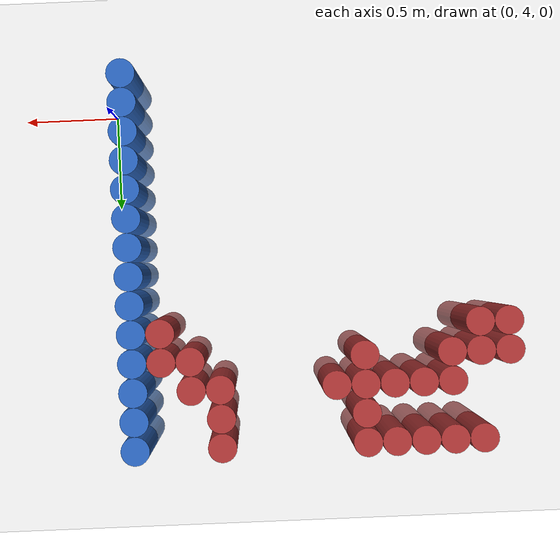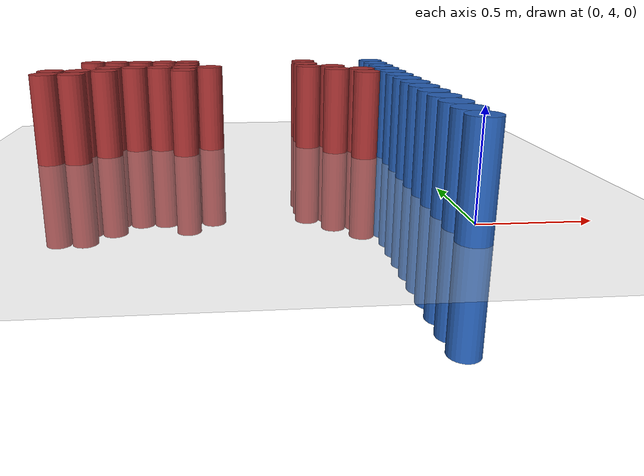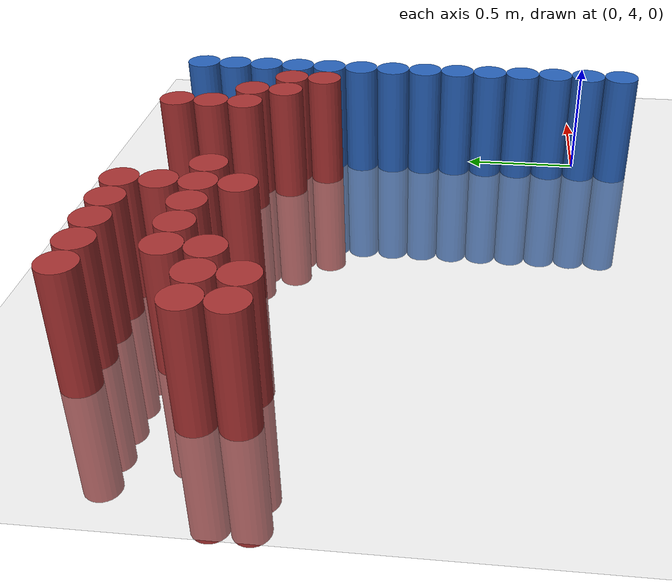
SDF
<sdf version="1.6">
 <world name="default">
  <model name="ground_plane">
   <static>1</static>
   <link name="link">
    <collision name="collision">
     <geometry><plane><normal>0 0 1</normal><size>100 100</size></plane></geometry>
     <surface><friction><ode><mu>100</mu><mu2>50</mu2></ode></friction></surface>
    </collision>
    <visual name="visual">
     <cast_shadows>0</cast_shadows>
     <geometry><plane><normal>0 0 1</normal><size>100 100</size></plane></geometry>
     <material>
      <script><uri>file://media/materials/scripts/gazebo.material</uri><name>Gazebo/Grey</name></script>
     </material>
    </visual>
   </link>
  </model>
  <model name="unit_cylinder_78">
   <static>1</static>
   <pose>-0.075000 3.825000 0.000000 0.000000 0.000000 0.000000</pose>
   <link name="link">
    <inertial>
     <mass>1</mass>
     <inertia><ixx>0.145833</ixx><ixy>0</ixy><ixz>0</ixz><iyy>0.145833</iyy><iyz>0</iyz><izz>0.125</izz></inertia>
    </inertial>
    <collision name="collision">
     <geometry><cylinder><radius>0.075000</radius><length>1</length></cylinder></geometry>
    </collision>
    <visual name="visual">
     <geometry><cylinder><radius>0.075000</radius><length>1</length></cylinder></geometry>
     <material>
      <ambient>0.152000 0.379000 0.720000 1</ambient>
      <diffuse>0.152000 0.379000 0.720000 1</diffuse>
     </material>
     <material>
      <script><name>Gazebo/Grey</name><uri>file://media/materials/scripts/gazebo.material</uri></script>
     </material>
    </visual>
    <sensor name="sensor_contact" type="contact"><contact><collision>collision</collision></contact></sensor>
   </link>
   <plugin filename="gz-sim-touchplugin-system" name="gz::sim::systems::TouchPlugin">
    <target>robot</target>
    <namespace>robot</namespace>
    <time>0.001</time>
    <enabled>true</enabled>
   </plugin>
  </model>
  <model name="unit_cylinder_80">
   <static>1</static>
   <pose>-0.075000 3.975000 0.000000 0.000000 0.000000 0.000000</pose>
   <link name="link">
    <inertial>
     <mass>1</mass>
     <inertia><ixx>0.145833</ixx><ixy>0</ixy><ixz>0</ixz><iyy>0.145833</iyy><iyz>0</iyz><izz>0.125</izz></inertia>
    </inertial>
    <collision name="collision">
     <geometry><cylinder><radius>0.075000</radius><length>1</length></cylinder></geometry>
    </collision>
    <visual name="visual">
     <geometry><cylinder><radius>0.075000</radius><length>1</length></cylinder></geometry>
     <material>
      <ambient>0.152000 0.379000 0.720000 1</ambient>
      <diffuse>0.152000 0.379000 0.720000 1</diffuse>
     </material>
     <material>
      <script><name>Gazebo/Grey</name><uri>file://media/materials/scripts/gazebo.material</uri></script>
     </material>
    </visual>
    <sensor name="sensor_contact" type="contact"><contact><collision>collision</collision></contact></sensor>
   </link>
   <plugin filename="gz-sim-touchplugin-system" name="gz::sim::systems::TouchPlugin">
    <target>robot</target>
    <namespace>robot</namespace>
    <time>0.001</time>
    <enabled>true</enabled>
   </plugin>
  </model>
  <model name="unit_cylinder_82">
   <static>1</static>
   <pose>-0.075000 4.125000 0.000000 0.000000 0.000000 0.000000</pose>
   <link name="link">
    <inertial>
     <mass>1</mass>
     <inertia><ixx>0.145833</ixx><ixy>0</ixy><ixz>0</ixz><iyy>0.145833</iyy><iyz>0</iyz><izz>0.125</izz></inertia>
    </inertial>
    <collision name="collision">
     <geometry><cylinder><radius>0.075000</radius><length>1</length></cylinder></geometry>
    </collision>
    <visual name="visual">
     <geometry><cylinder><radius>0.075000</radius><length>1</length></cylinder></geometry>
     <material>
      <ambient>0.152000 0.379000 0.720000 1</ambient>
      <diffuse>0.152000 0.379000 0.720000 1</diffuse>
     </material>
     <material>
      <script><name>Gazebo/Grey</name><uri>file://media/materials/scripts/gazebo.material</uri></script>
     </material>
    </visual>
    <sensor name="sensor_contact" type="contact"><contact><collision>collision</collision></contact></sensor>
   </link>
   <plugin filename="gz-sim-touchplugin-system" name="gz::sim::systems::TouchPlugin">
    <target>robot</target>
    <namespace>robot</namespace>
    <time>0.001</time>
    <enabled>true</enabled>
   </plugin>
  </model>
  <model name="unit_cylinder_84">
   <static>1</static>
   <pose>-0.075000 4.275000 0.000000 0.000000 0.000000 0.000000</pose>
   <link name="link">
    <inertial>
     <mass>1</mass>
     <inertia><ixx>0.145833</ixx><ixy>0</ixy><ixz>0</ixz><iyy>0.145833</iyy><iyz>0</iyz><izz>0.125</izz></inertia>
    </inertial>
    <collision name="collision">
     <geometry><cylinder><radius>0.075000</radius><length>1</length></cylinder></geometry>
    </collision>
    <visual name="visual">
     <geometry><cylinder><radius>0.075000</radius><length>1</length></cylinder></geometry>
     <material>
      <ambient>0.152000 0.379000 0.720000 1</ambient>
      <diffuse>0.152000 0.379000 0.720000 1</diffuse>
     </material>
     <material>
      <script><name>Gazebo/Grey</name><uri>file://media/materials/scripts/gazebo.material</uri></script>
     </material>
    </visual>
    <sensor name="sensor_contact" type="contact"><contact><collision>collision</collision></contact></sensor>
   </link>
   <plugin filename="gz-sim-touchplugin-system" name="gz::sim::systems::TouchPlugin">
    <target>robot</target>
    <namespace>robot</namespace>
    <time>0.001</time>
    <enabled>true</enabled>
   </plugin>
  </model>
  <model name="unit_cylinder_86">
   <static>1</static>
   <pose>-0.075000 4.425000 0.000000 0.000000 0.000000 0.000000</pose>
   <link name="link">
    <inertial>
     <mass>1</mass>
     <inertia><ixx>0.145833</ixx><ixy>0</ixy><ixz>0</ixz><iyy>0.145833</iyy><iyz>0</iyz><izz>0.125</izz></inertia>
    </inertial>
    <collision name="collision">
     <geometry><cylinder><radius>0.075000</radius><length>1</length></cylinder></geometry>
    </collision>
    <visual name="visual">
     <geometry><cylinder><radius>0.075000</radius><length>1</length></cylinder></geometry>
     <material>
      <ambient>0.152000 0.379000 0.720000 1</ambient>
      <diffuse>0.152000 0.379000 0.720000 1</diffuse>
     </material>
     <material>
      <script><name>Gazebo/Grey</name><uri>file://media/materials/scripts/gazebo.material</uri></script>
     </material>
    </visual>
    <sensor name="sensor_contact" type="contact"><contact><collision>collision</collision></contact></sensor>
   </link>
   <plugin filename="gz-sim-touchplugin-system" name="gz::sim::systems::TouchPlugin">
    <target>robot</target>
    <namespace>robot</namespace>
    <time>0.001</time>
    <enabled>true</enabled>
   </plugin>
  </model>
  <model name="unit_cylinder_88">
   <static>1</static>
   <pose>-0.075000 4.575000 0.000000 0.000000 0.000000 0.000000</pose>
   <link name="link">
    <inertial>
     <mass>1</mass>
     <inertia><ixx>0.145833</ixx><ixy>0</ixy><ixz>0</ixz><iyy>0.145833</iyy><iyz>0</iyz><izz>0.125</izz></inertia>
    </inertial>
    <collision name="collision">
     <geometry><cylinder><radius>0.075000</radius><length>1</length></cylinder></geometry>
    </collision>
    <visual name="visual">
     <geometry><cylinder><radius>0.075000</radius><length>1</length></cylinder></geometry>
     <material>
      <ambient>0.152000 0.379000 0.720000 1</ambient>
      <diffuse>0.152000 0.379000 0.720000 1</diffuse>
     </material>
     <material>
      <script><name>Gazebo/Grey</name><uri>file://media/materials/scripts/gazebo.material</uri></script>
     </material>
    </visual>
    <sensor name="sensor_contact" type="contact"><contact><collision>collision</collision></contact></sensor>
   </link>
   <plugin filename="gz-sim-touchplugin-system" name="gz::sim::systems::TouchPlugin">
    <target>robot</target>
    <namespace>robot</namespace>
    <time>0.001</time>
    <enabled>true</enabled>
   </plugin>
  </model>
  <model name="unit_cylinder_90">
   <static>1</static>
   <pose>-0.075000 4.725000 0.000000 0.000000 0.000000 0.000000</pose>
   <link name="link">
    <inertial>
     <mass>1</mass>
     <inertia><ixx>0.145833</ixx><ixy>0</ixy><ixz>0</ixz><iyy>0.145833</iyy><iyz>0</iyz><izz>0.125</izz></inertia>
    </inertial>
    <collision name="collision">
     <geometry><cylinder><radius>0.075000</radius><length>1</length></cylinder></geometry>
    </collision>
    <visual name="visual">
     <geometry><cylinder><radius>0.075000</radius><length>1</length></cylinder></geometry>
     <material>
      <ambient>0.152000 0.379000 0.720000 1</ambient>
      <diffuse>0.152000 0.379000 0.720000 1</diffuse>
     </material>
     <material>
      <script><name>Gazebo/Grey</name><uri>file://media/materials/scripts/gazebo.material</uri></script>
     </material>
    </visual>
    <sensor name="sensor_contact" type="contact"><contact><collision>collision</collision></contact></sensor>
   </link>
   <plugin filename="gz-sim-touchplugin-system" name="gz::sim::systems::TouchPlugin">
    <target>robot</target>
    <namespace>robot</namespace>
    <time>0.001</time>
    <enabled>true</enabled>
   </plugin>
  </model>
  <model name="unit_cylinder_92">
   <static>1</static>
   <pose>-0.075000 4.875000 0.000000 0.000000 0.000000 0.000000</pose>
   <link name="link">
    <inertial>
     <mass>1</mass>
     <inertia><ixx>0.145833</ixx><ixy>0</ixy><ixz>0</ixz><iyy>0.145833</iyy><iyz>0</iyz><izz>0.125</izz></inertia>
    </inertial>
    <collision name="collision">
     <geometry><cylinder><radius>0.075000</radius><length>1</length></cylinder></geometry>
    </collision>
    <visual name="visual">
     <geometry><cylinder><radius>0.075000</radius><length>1</length></cylinder></geometry>
     <material>
      <ambient>0.152000 0.379000 0.720000 1</ambient>
      <diffuse>0.152000 0.379000 0.720000 1</diffuse>
     </material>
     <material>
      <script><name>Gazebo/Grey</name><uri>file://media/materials/scripts/gazebo.material</uri></script>
     </material>
    </visual>
    <sensor name="sensor_contact" type="contact"><contact><collision>collision</collision></contact></sensor>
   </link>
   <plugin filename="gz-sim-touchplugin-system" name="gz::sim::systems::TouchPlugin">
    <target>robot</target>
    <namespace>robot</namespace>
    <time>0.001</time>
    <enabled>true</enabled>
   </plugin>
  </model>
  <model name="unit_cylinder_94">
   <static>1</static>
   <pose>-0.075000 5.025000 0.000000 0.000000 0.000000 0.000000</pose>
   <link name="link">
    <inertial>
     <mass>1</mass>
     <inertia><ixx>0.145833</ixx><ixy>0</ixy><ixz>0</ixz><iyy>0.145833</iyy><iyz>0</iyz><izz>0.125</izz></inertia>
    </inertial>
    <collision name="collision">
     <geometry><cylinder><radius>0.075000</radius><length>1</length></cylinder></geometry>
    </collision>
    <visual name="visual">
     <geometry><cylinder><radius>0.075000</radius><length>1</length></cylinder></geometry>
     <material>
      <ambient>0.152000 0.379000 0.720000 1</ambient>
      <diffuse>0.152000 0.379000 0.720000 1</diffuse>
     </material>
     <material>
      <script><name>Gazebo/Grey</name><uri>file://media/materials/scripts/gazebo.material</uri></script>
     </material>
    </visual>
    <sensor name="sensor_contact" type="contact"><contact><collision>collision</collision></contact></sensor>
   </link>
   <plugin filename="gz-sim-touchplugin-system" name="gz::sim::systems::TouchPlugin">
    <target>robot</target>
    <namespace>robot</namespace>
    <time>0.001</time>
    <enabled>true</enabled>
   </plugin>
  </model>
  <model name="unit_cylinder_193">
   <static>1</static>
   <pose>-2.025000 5.175000 0.000000 0.000000 0.000000 0.000000</pose>
   <link name="link">
    <inertial>
     <mass>1</mass>
     <inertia><ixx>0.145833</ixx><ixy>0</ixy><ixz>0</ixz><iyy>0.145833</iyy><iyz>0</iyz><izz>0.125</izz></inertia>
    </inertial>
    <collision name="collision">
     <geometry><cylinder><radius>0.075000</radius><length>1</length></cylinder></geometry>
    </collision>
    <visual name="visual">
     <geometry><cylinder><radius>0.075000</radius><length>1</length></cylinder></geometry>
     <material>
      <ambient>0.648000 0.192000 0.192000 1</ambient>
      <diffuse>0.648000 0.192000 0.192000 1</diffuse>
     </material>
     <material>
      <script><name>Gazebo/Grey</name><uri>file://media/materials/scripts/gazebo.material</uri></script>
     </material>
    </visual>
    <sensor name="sensor_contact" type="contact"><contact><collision>collision</collision></contact></sensor>
   </link>
   <plugin filename="gz-sim-touchplugin-system" name="gz::sim::systems::TouchPlugin">
    <target>robot</target>
    <namespace>robot</namespace>
    <time>0.001</time>
    <enabled>true</enabled>
   </plugin>
  </model>
  <model name="unit_cylinder_194">
   <static>1</static>
   <pose>-2.025000 5.325000 0.000000 0.000000 0.000000 0.000000</pose>
   <link name="link">
    <inertial>
     <mass>1</mass>
     <inertia><ixx>0.145833</ixx><ixy>0</ixy><ixz>0</ixz><iyy>0.145833</iyy><iyz>0</iyz><izz>0.125</izz></inertia>
    </inertial>
    <collision name="collision">
     <geometry><cylinder><radius>0.075000</radius><length>1</length></cylinder></geometry>
    </collision>
    <visual name="visual">
     <geometry><cylinder><radius>0.075000</radius><length>1</length></cylinder></geometry>
     <material>
      <ambient>0.648000 0.192000 0.192000 1</ambient>
      <diffuse>0.648000 0.192000 0.192000 1</diffuse>
     </material>
     <material>
      <script><name>Gazebo/Grey</name><uri>file://media/materials/scripts/gazebo.material</uri></script>
     </material>
    </visual>
    <sensor name="sensor_contact" type="contact"><contact><collision>collision</collision></contact></sensor>
   </link>
   <plugin filename="gz-sim-touchplugin-system" name="gz::sim::systems::TouchPlugin">
    <target>robot</target>
    <namespace>robot</namespace>
    <time>0.001</time>
    <enabled>true</enabled>
   </plugin>
  </model>
  <model name="unit_cylinder_201">
   <static>1</static>
   <pose>-1.875000 5.175000 0.000000 0.000000 0.000000 0.000000</pose>
   <link name="link">
    <inertial>
     <mass>1</mass>
     <inertia><ixx>0.145833</ixx><ixy>0</ixy><ixz>0</ixz><iyy>0.145833</iyy><iyz>0</iyz><izz>0.125</izz></inertia>
    </inertial>
    <collision name="collision">
     <geometry><cylinder><radius>0.075000</radius><length>1</length></cylinder></geometry>
    </collision>
    <visual name="visual">
     <geometry><cylinder><radius>0.075000</radius><length>1</length></cylinder></geometry>
     <material>
      <ambient>0.648000 0.192000 0.192000 1</ambient>
      <diffuse>0.648000 0.192000 0.192000 1</diffuse>
     </material>
     <material>
      <script><name>Gazebo/Grey</name><uri>file://media/materials/scripts/gazebo.material</uri></script>
     </material>
    </visual>
    <sensor name="sensor_contact" type="contact"><contact><collision>collision</collision></contact></sensor>
   </link>
   <plugin filename="gz-sim-touchplugin-system" name="gz::sim::systems::TouchPlugin">
    <target>robot</target>
    <namespace>robot</namespace>
    <time>0.001</time>
    <enabled>true</enabled>
   </plugin>
  </model>
  <model name="unit_cylinder_202">
   <static>1</static>
   <pose>-1.875000 5.325000 0.000000 0.000000 0.000000 0.000000</pose>
   <link name="link">
    <inertial>
     <mass>1</mass>
     <inertia><ixx>0.145833</ixx><ixy>0</ixy><ixz>0</ixz><iyy>0.145833</iyy><iyz>0</iyz><izz>0.125</izz></inertia>
    </inertial>
    <collision name="collision">
     <geometry><cylinder><radius>0.075000</radius><length>1</length></cylinder></geometry>
    </collision>
    <visual name="visual">
     <geometry><cylinder><radius>0.075000</radius><length>1</length></cylinder></geometry>
     <material>
      <ambient>0.648000 0.192000 0.192000 1</ambient>
      <diffuse>0.648000 0.192000 0.192000 1</diffuse>
     </material>
     <material>
      <script><name>Gazebo/Grey</name><uri>file://media/materials/scripts/gazebo.material</uri></script>
     </material>
    </visual>
    <sensor name="sensor_contact" type="contact"><contact><collision>collision</collision></contact></sensor>
   </link>
   <plugin filename="gz-sim-touchplugin-system" name="gz::sim::systems::TouchPlugin">
    <target>robot</target>
    <namespace>robot</namespace>
    <time>0.001</time>
    <enabled>true</enabled>
   </plugin>
  </model>
  <model name="unit_cylinder_203">
   <static>1</static>
   <pose>-1.875000 5.775000 0.000000 0.000000 0.000000 0.000000</pose>
   <link name="link">
    <inertial>
     <mass>1</mass>
     <inertia><ixx>0.145833</ixx><ixy>0</ixy><ixz>0</ixz><iyy>0.145833</iyy><iyz>0</iyz><izz>0.125</izz></inertia>
    </inertial>
    <collision name="collision">
     <geometry><cylinder><radius>0.075000</radius><length>1</length></cylinder></geometry>
    </collision>
    <visual name="visual">
     <geometry><cylinder><radius>0.075000</radius><length>1</length></cylinder></geometry>
     <material>
      <ambient>0.648000 0.192000 0.192000 1</ambient>
      <diffuse>0.648000 0.192000 0.192000 1</diffuse>
     </material>
     <material>
      <script><name>Gazebo/Grey</name><uri>file://media/materials/scripts/gazebo.material</uri></script>
     </material>
    </visual>
    <sensor name="sensor_contact" type="contact"><contact><collision>collision</collision></contact></sensor>
   </link>
   <plugin filename="gz-sim-touchplugin-system" name="gz::sim::systems::TouchPlugin">
    <target>robot</target>
    <namespace>robot</namespace>
    <time>0.001</time>
    <enabled>true</enabled>
   </plugin>
  </model>
  <model name="unit_cylinder_209">
   <static>1</static>
   <pose>-1.725000 5.325000 0.000000 0.000000 0.000000 0.000000</pose>
   <link name="link">
    <inertial>
     <mass>1</mass>
     <inertia><ixx>0.145833</ixx><ixy>0</ixy><ixz>0</ixz><iyy>0.145833</iyy><iyz>0</iyz><izz>0.125</izz></inertia>
    </inertial>
    <collision name="collision">
     <geometry><cylinder><radius>0.075000</radius><length>1</length></cylinder></geometry>
    </collision>
    <visual name="visual">
     <geometry><cylinder><radius>0.075000</radius><length>1</length></cylinder></geometry>
     <material>
      <ambient>0.648000 0.192000 0.192000 1</ambient>
      <diffuse>0.648000 0.192000 0.192000 1</diffuse>
     </material>
     <material>
      <script><name>Gazebo/Grey</name><uri>file://media/materials/scripts/gazebo.material</uri></script>
     </material>
    </visual>
    <sensor name="sensor_contact" type="contact"><contact><collision>collision</collision></contact></sensor>
   </link>
   <plugin filename="gz-sim-touchplugin-system" name="gz::sim::systems::TouchPlugin">
    <target>robot</target>
    <namespace>robot</namespace>
    <time>0.001</time>
    <enabled>true</enabled>
   </plugin>
  </model>
  <model name="unit_cylinder_210">
   <static>1</static>
   <pose>-1.725000 5.475000 0.000000 0.000000 0.000000 0.000000</pose>
   <link name="link">
    <inertial>
     <mass>1</mass>
     <inertia><ixx>0.145833</ixx><ixy>0</ixy><ixz>0</ixz><iyy>0.145833</iyy><iyz>0</iyz><izz>0.125</izz></inertia>
    </inertial>
    <collision name="collision">
     <geometry><cylinder><radius>0.075000</radius><length>1</length></cylinder></geometry>
    </collision>
    <visual name="visual">
     <geometry><cylinder><radius>0.075000</radius><length>1</length></cylinder></geometry>
     <material>
      <ambient>0.648000 0.192000 0.192000 1</ambient>
      <diffuse>0.648000 0.192000 0.192000 1</diffuse>
     </material>
     <material>
      <script><name>Gazebo/Grey</name><uri>file://media/materials/scripts/gazebo.material</uri></script>
     </material>
    </visual>
    <sensor name="sensor_contact" type="contact"><contact><collision>collision</collision></contact></sensor>
   </link>
   <plugin filename="gz-sim-touchplugin-system" name="gz::sim::systems::TouchPlugin">
    <target>robot</target>
    <namespace>robot</namespace>
    <time>0.001</time>
    <enabled>true</enabled>
   </plugin>
  </model>
  <model name="unit_cylinder_211">
   <static>1</static>
   <pose>-1.725000 5.775000 0.000000 0.000000 0.000000 0.000000</pose>
   <link name="link">
    <inertial>
     <mass>1</mass>
     <inertia><ixx>0.145833</ixx><ixy>0</ixy><ixz>0</ixz><iyy>0.145833</iyy><iyz>0</iyz><izz>0.125</izz></inertia>
    </inertial>
    <collision name="collision">
     <geometry><cylinder><radius>0.075000</radius><length>1</length></cylinder></geometry>
    </collision>
    <visual name="visual">
     <geometry><cylinder><radius>0.075000</radius><length>1</length></cylinder></geometry>
     <material>
      <ambient>0.648000 0.192000 0.192000 1</ambient>
      <diffuse>0.648000 0.192000 0.192000 1</diffuse>
     </material>
     <material>
      <script><name>Gazebo/Grey</name><uri>file://media/materials/scripts/gazebo.material</uri></script>
     </material>
    </visual>
    <sensor name="sensor_contact" type="contact"><contact><collision>collision</collision></contact></sensor>
   </link>
   <plugin filename="gz-sim-touchplugin-system" name="gz::sim::systems::TouchPlugin">
    <target>robot</target>
    <namespace>robot</namespace>
    <time>0.001</time>
    <enabled>true</enabled>
   </plugin>
  </model>
  <model name="unit_cylinder_216">
   <static>1</static>
   <pose>-1.575000 5.475000 0.000000 0.000000 0.000000 0.000000</pose>
   <link name="link">
    <inertial>
     <mass>1</mass>
     <inertia><ixx>0.145833</ixx><ixy>0</ixy><ixz>0</ixz><iyy>0.145833</iyy><iyz>0</iyz><izz>0.125</izz></inertia>
    </inertial>
    <collision name="collision">
     <geometry><cylinder><radius>0.075000</radius><length>1</length></cylinder></geometry>
    </collision>
    <visual name="visual">
     <geometry><cylinder><radius>0.075000</radius><length>1</length></cylinder></geometry>
     <material>
      <ambient>0.648000 0.192000 0.192000 1</ambient>
      <diffuse>0.648000 0.192000 0.192000 1</diffuse>
     </material>
     <material>
      <script><name>Gazebo/Grey</name><uri>file://media/materials/scripts/gazebo.material</uri></script>
     </material>
    </visual>
    <sensor name="sensor_contact" type="contact"><contact><collision>collision</collision></contact></sensor>
   </link>
   <plugin filename="gz-sim-touchplugin-system" name="gz::sim::systems::TouchPlugin">
    <target>robot</target>
    <namespace>robot</namespace>
    <time>0.001</time>
    <enabled>true</enabled>
   </plugin>
  </model>
  <model name="unit_cylinder_217">
   <static>1</static>
   <pose>-1.575000 5.775000 0.000000 0.000000 0.000000 0.000000</pose>
   <link name="link">
    <inertial>
     <mass>1</mass>
     <inertia><ixx>0.145833</ixx><ixy>0</ixy><ixz>0</ixz><iyy>0.145833</iyy><iyz>0</iyz><izz>0.125</izz></inertia>
    </inertial>
    <collision name="collision">
     <geometry><cylinder><radius>0.075000</radius><length>1</length></cylinder></geometry>
    </collision>
    <visual name="visual">
     <geometry><cylinder><radius>0.075000</radius><length>1</length></cylinder></geometry>
     <material>
      <ambient>0.648000 0.192000 0.192000 1</ambient>
      <diffuse>0.648000 0.192000 0.192000 1</diffuse>
     </material>
     <material>
      <script><name>Gazebo/Grey</name><uri>file://media/materials/scripts/gazebo.material</uri></script>
     </material>
    </visual>
    <sensor name="sensor_contact" type="contact"><contact><collision>collision</collision></contact></sensor>
   </link>
   <plugin filename="gz-sim-touchplugin-system" name="gz::sim::systems::TouchPlugin">
    <target>robot</target>
    <namespace>robot</namespace>
    <time>0.001</time>
    <enabled>true</enabled>
   </plugin>
  </model>
  <model name="unit_cylinder_226">
   <static>1</static>
   <pose>-1.425000 5.475000 0.000000 0.000000 0.000000 0.000000</pose>
   <link name="link">
    <inertial>
     <mass>1</mass>
     <inertia><ixx>0.145833</ixx><ixy>0</ixy><ixz>0</ixz><iyy>0.145833</iyy><iyz>0</iyz><izz>0.125</izz></inertia>
    </inertial>
    <collision name="collision">
     <geometry><cylinder><radius>0.075000</radius><length>1</length></cylinder></geometry>
    </collision>
    <visual name="visual">
     <geometry><cylinder><radius>0.075000</radius><length>1</length></cylinder></geometry>
     <material>
      <ambient>0.648000 0.192000 0.192000 1</ambient>
      <diffuse>0.648000 0.192000 0.192000 1</diffuse>
     </material>
     <material>
      <script><name>Gazebo/Grey</name><uri>file://media/materials/scripts/gazebo.material</uri></script>
     </material>
    </visual>
    <sensor name="sensor_contact" type="contact"><contact><collision>collision</collision></contact></sensor>
   </link>
   <plugin filename="gz-sim-touchplugin-system" name="gz::sim::systems::TouchPlugin">
    <target>robot</target>
    <namespace>robot</namespace>
    <time>0.001</time>
    <enabled>true</enabled>
   </plugin>
  </model>
  <model name="unit_cylinder_227">
   <static>1</static>
   <pose>-1.425000 5.775000 0.000000 0.000000 0.000000 0.000000</pose>
   <link name="link">
    <inertial>
     <mass>1</mass>
     <inertia><ixx>0.145833</ixx><ixy>0</ixy><ixz>0</ixz><iyy>0.145833</iyy><iyz>0</iyz><izz>0.125</izz></inertia>
    </inertial>
    <collision name="collision">
     <geometry><cylinder><radius>0.075000</radius><length>1</length></cylinder></geometry>
    </collision>
    <visual name="visual">
     <geometry><cylinder><radius>0.075000</radius><length>1</length></cylinder></geometry>
     <material>
      <ambient>0.648000 0.192000 0.192000 1</ambient>
      <diffuse>0.648000 0.192000 0.192000 1</diffuse>
     </material>
     <material>
      <script><name>Gazebo/Grey</name><uri>file://media/materials/scripts/gazebo.material</uri></script>
     </material>
    </visual>
    <sensor name="sensor_contact" type="contact"><contact><collision>collision</collision></contact></sensor>
   </link>
   <plugin filename="gz-sim-touchplugin-system" name="gz::sim::systems::TouchPlugin">
    <target>robot</target>
    <namespace>robot</namespace>
    <time>0.001</time>
    <enabled>true</enabled>
   </plugin>
  </model>
  <model name="unit_cylinder_241">
   <static>1</static>
   <pose>-1.275000 5.325000 0.000000 0.000000 0.000000 0.000000</pose>
   <link name="link">
    <inertial>
     <mass>1</mass>
     <inertia><ixx>0.145833</ixx><ixy>0</ixy><ixz>0</ixz><iyy>0.145833</iyy><iyz>0</iyz><izz>0.125</izz></inertia>
    </inertial>
    <collision name="collision">
     <geometry><cylinder><radius>0.075000</radius><length>1</length></cylinder></geometry>
    </collision>
    <visual name="visual">
     <geometry><cylinder><radius>0.075000</radius><length>1</length></cylinder></geometry>
     <material>
      <ambient>0.648000 0.192000 0.192000 1</ambient>
      <diffuse>0.648000 0.192000 0.192000 1</diffuse>
     </material>
     <material>
      <script><name>Gazebo/Grey</name><uri>file://media/materials/scripts/gazebo.material</uri></script>
     </material>
    </visual>
    <sensor name="sensor_contact" type="contact"><contact><collision>collision</collision></contact></sensor>
   </link>
   <plugin filename="gz-sim-touchplugin-system" name="gz::sim::systems::TouchPlugin">
    <target>robot</target>
    <namespace>robot</namespace>
    <time>0.001</time>
    <enabled>true</enabled>
   </plugin>
  </model>
  <model name="unit_cylinder_242">
   <static>1</static>
   <pose>-1.275000 5.475000 0.000000 0.000000 0.000000 0.000000</pose>
   <link name="link">
    <inertial>
     <mass>1</mass>
     <inertia><ixx>0.145833</ixx><ixy>0</ixy><ixz>0</ixz><iyy>0.145833</iyy><iyz>0</iyz><izz>0.125</izz></inertia>
    </inertial>
    <collision name="collision">
     <geometry><cylinder><radius>0.075000</radius><length>1</length></cylinder></geometry>
    </collision>
    <visual name="visual">
     <geometry><cylinder><radius>0.075000</radius><length>1</length></cylinder></geometry>
     <material>
      <ambient>0.648000 0.192000 0.192000 1</ambient>
      <diffuse>0.648000 0.192000 0.192000 1</diffuse>
     </material>
     <material>
      <script><name>Gazebo/Grey</name><uri>file://media/materials/scripts/gazebo.material</uri></script>
     </material>
    </visual>
    <sensor name="sensor_contact" type="contact"><contact><collision>collision</collision></contact></sensor>
   </link>
   <plugin filename="gz-sim-touchplugin-system" name="gz::sim::systems::TouchPlugin">
    <target>robot</target>
    <namespace>robot</namespace>
    <time>0.001</time>
    <enabled>true</enabled>
   </plugin>
  </model>
  <model name="unit_cylinder_243">
   <static>1</static>
   <pose>-1.275000 5.625000 0.000000 0.000000 0.000000 0.000000</pose>
   <link name="link">
    <inertial>
     <mass>1</mass>
     <inertia><ixx>0.145833</ixx><ixy>0</ixy><ixz>0</ixz><iyy>0.145833</iyy><iyz>0</iyz><izz>0.125</izz></inertia>
    </inertial>
    <collision name="collision">
     <geometry><cylinder><radius>0.075000</radius><length>1</length></cylinder></geometry>
    </collision>
    <visual name="visual">
     <geometry><cylinder><radius>0.075000</radius><length>1</length></cylinder></geometry>
     <material>
      <ambient>0.648000 0.192000 0.192000 1</ambient>
      <diffuse>0.648000 0.192000 0.192000 1</diffuse>
     </material>
     <material>
      <script><name>Gazebo/Grey</name><uri>file://media/materials/scripts/gazebo.material</uri></script>
     </material>
    </visual>
    <sensor name="sensor_contact" type="contact"><contact><collision>collision</collision></contact></sensor>
   </link>
   <plugin filename="gz-sim-touchplugin-system" name="gz::sim::systems::TouchPlugin">
    <target>robot</target>
    <namespace>robot</namespace>
    <time>0.001</time>
    <enabled>true</enabled>
   </plugin>
  </model>
  <model name="unit_cylinder_244">
   <static>1</static>
   <pose>-1.275000 5.775000 0.000000 0.000000 0.000000 0.000000</pose>
   <link name="link">
    <inertial>
     <mass>1</mass>
     <inertia><ixx>0.145833</ixx><ixy>0</ixy><ixz>0</ixz><iyy>0.145833</iyy><iyz>0</iyz><izz>0.125</izz></inertia>
    </inertial>
    <collision name="collision">
     <geometry><cylinder><radius>0.075000</radius><length>1</length></cylinder></geometry>
    </collision>
    <visual name="visual">
     <geometry><cylinder><radius>0.075000</radius><length>1</length></cylinder></geometry>
     <material>
      <ambient>0.648000 0.192000 0.192000 1</ambient>
      <diffuse>0.648000 0.192000 0.192000 1</diffuse>
     </material>
     <material>
      <script><name>Gazebo/Grey</name><uri>file://media/materials/scripts/gazebo.material</uri></script>
     </material>
    </visual>
    <sensor name="sensor_contact" type="contact"><contact><collision>collision</collision></contact></sensor>
   </link>
   <plugin filename="gz-sim-touchplugin-system" name="gz::sim::systems::TouchPlugin">
    <target>robot</target>
    <namespace>robot</namespace>
    <time>0.001</time>
    <enabled>true</enabled>
   </plugin>
  </model>
  <model name="unit_cylinder_259">
   <static>1</static>
   <pose>-1.125000 5.475000 0.000000 0.000000 0.000000 0.000000</pose>
   <link name="link">
    <inertial>
     <mass>1</mass>
     <inertia><ixx>0.145833</ixx><ixy>0</ixy><ixz>0</ixz><iyy>0.145833</iyy><iyz>0</iyz><izz>0.125</izz></inertia>
    </inertial>
    <collision name="collision">
     <geometry><cylinder><radius>0.075000</radius><length>1</length></cylinder></geometry>
    </collision>
    <visual name="visual">
     <geometry><cylinder><radius>0.075000</radius><length>1</length></cylinder></geometry>
     <material>
      <ambient>0.648000 0.192000 0.192000 1</ambient>
      <diffuse>0.648000 0.192000 0.192000 1</diffuse>
     </material>
     <material>
      <script><name>Gazebo/Grey</name><uri>file://media/materials/scripts/gazebo.material</uri></script>
     </material>
    </visual>
    <sensor name="sensor_contact" type="contact"><contact><collision>collision</collision></contact></sensor>
   </link>
   <plugin filename="gz-sim-touchplugin-system" name="gz::sim::systems::TouchPlugin">
    <target>robot</target>
    <namespace>robot</namespace>
    <time>0.001</time>
    <enabled>true</enabled>
   </plugin>
  </model>
  <model name="unit_cylinder_277">
   <static>1</static>
   <pose>-0.525000 5.475000 0.000000 0.000000 0.000000 0.000000</pose>
   <link name="link">
    <inertial>
     <mass>1</mass>
     <inertia><ixx>0.145833</ixx><ixy>0</ixy><ixz>0</ixz><iyy>0.145833</iyy><iyz>0</iyz><izz>0.125</izz></inertia>
    </inertial>
    <collision name="collision">
     <geometry><cylinder><radius>0.075000</radius><length>1</length></cylinder></geometry>
    </collision>
    <visual name="visual">
     <geometry><cylinder><radius>0.075000</radius><length>1</length></cylinder></geometry>
     <material>
      <ambient>0.648000 0.192000 0.192000 1</ambient>
      <diffuse>0.648000 0.192000 0.192000 1</diffuse>
     </material>
     <material>
      <script><name>Gazebo/Grey</name><uri>file://media/materials/scripts/gazebo.material</uri></script>
     </material>
    </visual>
    <sensor name="sensor_contact" type="contact"><contact><collision>collision</collision></contact></sensor>
   </link>
   <plugin filename="gz-sim-touchplugin-system" name="gz::sim::systems::TouchPlugin">
    <target>robot</target>
    <namespace>robot</namespace>
    <time>0.001</time>
    <enabled>true</enabled>
   </plugin>
  </model>
  <model name="unit_cylinder_278">
   <static>1</static>
   <pose>-0.525000 5.625000 0.000000 0.000000 0.000000 0.000000</pose>
   <link name="link">
    <inertial>
     <mass>1</mass>
     <inertia><ixx>0.145833</ixx><ixy>0</ixy><ixz>0</ixz><iyy>0.145833</iyy><iyz>0</iyz><izz>0.125</izz></inertia>
    </inertial>
    <collision name="collision">
     <geometry><cylinder><radius>0.075000</radius><length>1</length></cylinder></geometry>
    </collision>
    <visual name="visual">
     <geometry><cylinder><radius>0.075000</radius><length>1</length></cylinder></geometry>
     <material>
      <ambient>0.648000 0.192000 0.192000 1</ambient>
      <diffuse>0.648000 0.192000 0.192000 1</diffuse>
     </material>
     <material>
      <script><name>Gazebo/Grey</name><uri>file://media/materials/scripts/gazebo.material</uri></script>
     </material>
    </visual>
    <sensor name="sensor_contact" type="contact"><contact><collision>collision</collision></contact></sensor>
   </link>
   <plugin filename="gz-sim-touchplugin-system" name="gz::sim::systems::TouchPlugin">
    <target>robot</target>
    <namespace>robot</namespace>
    <time>0.001</time>
    <enabled>true</enabled>
   </plugin>
  </model>
  <model name="unit_cylinder_279">
   <static>1</static>
   <pose>-0.525000 5.775000 0.000000 0.000000 0.000000 0.000000</pose>
   <link name="link">
    <inertial>
     <mass>1</mass>
     <inertia><ixx>0.145833</ixx><ixy>0</ixy><ixz>0</ixz><iyy>0.145833</iyy><iyz>0</iyz><izz>0.125</izz></inertia>
    </inertial>
    <collision name="collision">
     <geometry><cylinder><radius>0.075000</radius><length>1</length></cylinder></geometry>
    </collision>
    <visual name="visual">
     <geometry><cylinder><radius>0.075000</radius><length>1</length></cylinder></geometry>
     <material>
      <ambient>0.648000 0.192000 0.192000 1</ambient>
      <diffuse>0.648000 0.192000 0.192000 1</diffuse>
     </material>
     <material>
      <script><name>Gazebo/Grey</name><uri>file://media/materials/scripts/gazebo.material</uri></script>
     </material>
    </visual>
    <sensor name="sensor_contact" type="contact"><contact><collision>collision</collision></contact></sensor>
   </link>
   <plugin filename="gz-sim-touchplugin-system" name="gz::sim::systems::TouchPlugin">
    <target>robot</target>
    <namespace>robot</namespace>
    <time>0.001</time>
    <enabled>true</enabled>
   </plugin>
  </model>
  <model name="unit_cylinder_283">
   <static>1</static>
   <pose>-0.375000 5.325000 0.000000 0.000000 0.000000 0.000000</pose>
   <link name="link">
    <inertial>
     <mass>1</mass>
     <inertia><ixx>0.145833</ixx><ixy>0</ixy><ixz>0</ixz><iyy>0.145833</iyy><iyz>0</iyz><izz>0.125</izz></inertia>
    </inertial>
    <collision name="collision">
     <geometry><cylinder><radius>0.075000</radius><length>1</length></cylinder></geometry>
    </collision>
    <visual name="visual">
     <geometry><cylinder><radius>0.075000</radius><length>1</length></cylinder></geometry>
     <material>
      <ambient>0.648000 0.192000 0.192000 1</ambient>
      <diffuse>0.648000 0.192000 0.192000 1</diffuse>
     </material>
     <material>
      <script><name>Gazebo/Grey</name><uri>file://media/materials/scripts/gazebo.material</uri></script>
     </material>
    </visual>
    <sensor name="sensor_contact" type="contact"><contact><collision>collision</collision></contact></sensor>
   </link>
   <plugin filename="gz-sim-touchplugin-system" name="gz::sim::systems::TouchPlugin">
    <target>robot</target>
    <namespace>robot</namespace>
    <time>0.001</time>
    <enabled>true</enabled>
   </plugin>
  </model>
  <model name="unit_cylinder_284">
   <static>1</static>
   <pose>-0.375000 5.475000 0.000000 0.000000 0.000000 0.000000</pose>
   <link name="link">
    <inertial>
     <mass>1</mass>
     <inertia><ixx>0.145833</ixx><ixy>0</ixy><ixz>0</ixz><iyy>0.145833</iyy><iyz>0</iyz><izz>0.125</izz></inertia>
    </inertial>
    <collision name="collision">
     <geometry><cylinder><radius>0.075000</radius><length>1</length></cylinder></geometry>
    </collision>
    <visual name="visual">
     <geometry><cylinder><radius>0.075000</radius><length>1</length></cylinder></geometry>
     <material>
      <ambient>0.648000 0.192000 0.192000 1</ambient>
      <diffuse>0.648000 0.192000 0.192000 1</diffuse>
     </material>
     <material>
      <script><name>Gazebo/Grey</name><uri>file://media/materials/scripts/gazebo.material</uri></script>
     </material>
    </visual>
    <sensor name="sensor_contact" type="contact"><contact><collision>collision</collision></contact></sensor>
   </link>
   <plugin filename="gz-sim-touchplugin-system" name="gz::sim::systems::TouchPlugin">
    <target>robot</target>
    <namespace>robot</namespace>
    <time>0.001</time>
    <enabled>true</enabled>
   </plugin>
  </model>
  <model name="unit_cylinder_292">
   <static>1</static>
   <pose>-0.225000 5.175000 0.000000 0.000000 0.000000 0.000000</pose>
   <link name="link">
    <inertial>
     <mass>1</mass>
     <inertia><ixx>0.145833</ixx><ixy>0</ixy><ixz>0</ixz><iyy>0.145833</iyy><iyz>0</iyz><izz>0.125</izz></inertia>
    </inertial>
    <collision name="collision">
     <geometry><cylinder><radius>0.075000</radius><length>1</length></cylinder></geometry>
    </collision>
    <visual name="visual">
     <geometry><cylinder><radius>0.075000</radius><length>1</length></cylinder></geometry>
     <material>
      <ambient>0.648000 0.192000 0.192000 1</ambient>
      <diffuse>0.648000 0.192000 0.192000 1</diffuse>
     </material>
     <material>
      <script><name>Gazebo/Grey</name><uri>file://media/materials/scripts/gazebo.material</uri></script>
     </material>
    </visual>
    <sensor name="sensor_contact" type="contact"><contact><collision>collision</collision></contact></sensor>
   </link>
   <plugin filename="gz-sim-touchplugin-system" name="gz::sim::systems::TouchPlugin">
    <target>robot</target>
    <namespace>robot</namespace>
    <time>0.001</time>
    <enabled>true</enabled>
   </plugin>
  </model>
  <model name="unit_cylinder_293">
   <static>1</static>
   <pose>-0.225000 5.325000 0.000000 0.000000 0.000000 0.000000</pose>
   <link name="link">
    <inertial>
     <mass>1</mass>
     <inertia><ixx>0.145833</ixx><ixy>0</ixy><ixz>0</ixz><iyy>0.145833</iyy><iyz>0</iyz><izz>0.125</izz></inertia>
    </inertial>
    <collision name="collision">
     <geometry><cylinder><radius>0.075000</radius><length>1</length></cylinder></geometry>
    </collision>
    <visual name="visual">
     <geometry><cylinder><radius>0.075000</radius><length>1</length></cylinder></geometry>
     <material>
      <ambient>0.648000 0.192000 0.192000 1</ambient>
      <diffuse>0.648000 0.192000 0.192000 1</diffuse>
     </material>
     <material>
      <script><name>Gazebo/Grey</name><uri>file://media/materials/scripts/gazebo.material</uri></script>
     </material>
    </visual>
    <sensor name="sensor_contact" type="contact"><contact><collision>collision</collision></contact></sensor>
   </link>
   <plugin filename="gz-sim-touchplugin-system" name="gz::sim::systems::TouchPlugin">
    <target>robot</target>
    <namespace>robot</namespace>
    <time>0.001</time>
    <enabled>true</enabled>
   </plugin>
  </model>
  <model name="unit_cylinder_315">
   <static>1</static>
   <pose>-0.075000 5.175000 0.000000 0.000000 0.000000 0.000000</pose>
   <link name="link">
    <inertial>
     <mass>1</mass>
     <inertia><ixx>0.145833</ixx><ixy>0</ixy><ixz>0</ixz><iyy>0.145833</iyy><iyz>0</iyz><izz>0.125</izz></inertia>
    </inertial>
    <collision name="collision">
     <geometry><cylinder><radius>0.075000</radius><length>1</length></cylinder></geometry>
    </collision>
    <visual name="visual">
     <geometry><cylinder><radius>0.075000</radius><length>1</length></cylinder></geometry>
     <material>
      <ambient>0.152000 0.379000 0.720000 1</ambient>
      <diffuse>0.152000 0.379000 0.720000 1</diffuse>
     </material>
     <material>
      <script><name>Gazebo/Grey</name><uri>file://media/materials/scripts/gazebo.material</uri></script>
     </material>
    </visual>
    <sensor name="sensor_contact" type="contact"><contact><collision>collision</collision></contact></sensor>
   </link>
   <plugin filename="gz-sim-touchplugin-system" name="gz::sim::systems::TouchPlugin">
    <target>robot</target>
    <namespace>robot</namespace>
    <time>0.001</time>
    <enabled>true</enabled>
   </plugin>
  </model>
  <model name="unit_cylinder_316">
   <static>1</static>
   <pose>-0.075000 5.325000 0.000000 0.000000 0.000000 0.000000</pose>
   <link name="link">
    <inertial>
     <mass>1</mass>
     <inertia><ixx>0.145833</ixx><ixy>0</ixy><ixz>0</ixz><iyy>0.145833</iyy><iyz>0</iyz><izz>0.125</izz></inertia>
    </inertial>
    <collision name="collision">
     <geometry><cylinder><radius>0.075000</radius><length>1</length></cylinder></geometry>
    </collision>
    <visual name="visual">
     <geometry><cylinder><radius>0.075000</radius><length>1</length></cylinder></geometry>
     <material>
      <ambient>0.152000 0.379000 0.720000 1</ambient>
      <diffuse>0.152000 0.379000 0.720000 1</diffuse>
     </material>
     <material>
      <script><name>Gazebo/Grey</name><uri>file://media/materials/scripts/gazebo.material</uri></script>
     </material>
    </visual>
    <sensor name="sensor_contact" type="contact"><contact><collision>collision</collision></contact></sensor>
   </link>
   <plugin filename="gz-sim-touchplugin-system" name="gz::sim::systems::TouchPlugin">
    <target>robot</target>
    <namespace>robot</namespace>
    <time>0.001</time>
    <enabled>true</enabled>
   </plugin>
  </model>
  <model name="unit_cylinder_317">
   <static>1</static>
   <pose>-0.075000 5.475000 0.000000 0.000000 0.000000 0.000000</pose>
   <link name="link">
    <inertial>
     <mass>1</mass>
     <inertia><ixx>0.145833</ixx><ixy>0</ixy><ixz>0</ixz><iyy>0.145833</iyy><iyz>0</iyz><izz>0.125</izz></inertia>
    </inertial>
    <collision name="collision">
     <geometry><cylinder><radius>0.075000</radius><length>1</length></cylinder></geometry>
    </collision>
    <visual name="visual">
     <geometry><cylinder><radius>0.075000</radius><length>1</length></cylinder></geometry>
     <material>
      <ambient>0.152000 0.379000 0.720000 1</ambient>
      <diffuse>0.152000 0.379000 0.720000 1</diffuse>
     </material>
     <material>
      <script><name>Gazebo/Grey</name><uri>file://media/materials/scripts/gazebo.material</uri></script>
     </material>
    </visual>
    <sensor name="sensor_contact" type="contact"><contact><collision>collision</collision></contact></sensor>
   </link>
   <plugin filename="gz-sim-touchplugin-system" name="gz::sim::systems::TouchPlugin">
    <target>robot</target>
    <namespace>robot</namespace>
    <time>0.001</time>
    <enabled>true</enabled>
   </plugin>
  </model>
  <model name="unit_cylinder_318">
   <static>1</static>
   <pose>-0.075000 5.625000 0.000000 0.000000 0.000000 0.000000</pose>
   <link name="link">
    <inertial>
     <mass>1</mass>
     <inertia><ixx>0.145833</ixx><ixy>0</ixy><ixz>0</ixz><iyy>0.145833</iyy><iyz>0</iyz><izz>0.125</izz></inertia>
    </inertial>
    <collision name="collision">
     <geometry><cylinder><radius>0.075000</radius><length>1</length></cylinder></geometry>
    </collision>
    <visual name="visual">
     <geometry><cylinder><radius>0.075000</radius><length>1</length></cylinder></geometry>
     <material>
      <ambient>0.152000 0.379000 0.720000 1</ambient>
      <diffuse>0.152000 0.379000 0.720000 1</diffuse>
     </material>
     <material>
      <script><name>Gazebo/Grey</name><uri>file://media/materials/scripts/gazebo.material</uri></script>
     </material>
    </visual>
    <sensor name="sensor_contact" type="contact"><contact><collision>collision</collision></contact></sensor>
   </link>
   <plugin filename="gz-sim-touchplugin-system" name="gz::sim::systems::TouchPlugin">
    <target>robot</target>
    <namespace>robot</namespace>
    <time>0.001</time>
    <enabled>true</enabled>
   </plugin>
  </model>
  <model name="unit_cylinder_319">
   <static>1</static>
   <pose>-0.075000 5.775000 0.000000 0.000000 0.000000 0.000000</pose>
   <link name="link">
    <inertial>
     <mass>1</mass>
     <inertia><ixx>0.145833</ixx><ixy>0</ixy><ixz>0</ixz><iyy>0.145833</iyy><iyz>0</iyz><izz>0.125</izz></inertia>
    </inertial>
    <collision name="collision">
     <geometry><cylinder><radius>0.075000</radius><length>1</length></cylinder></geometry>
    </collision>
    <visual name="visual">
     <geometry><cylinder><radius>0.075000</radius><length>1</length></cylinder></geometry>
     <material>
      <ambient>0.152000 0.379000 0.720000 1</ambient>
      <diffuse>0.152000 0.379000 0.720000 1</diffuse>
     </material>
     <material>
      <script><name>Gazebo/Grey</name><uri>file://media/materials/scripts/gazebo.material</uri></script>
     </material>
    </visual>
    <sensor name="sensor_contact" type="contact"><contact><collision>collision</collision></contact></sensor>
   </link>
   <plugin filename="gz-sim-touchplugin-system" name="gz::sim::systems::TouchPlugin">
    <target>robot</target>
    <namespace>robot</namespace>
    <time>0.001</time>
    <enabled>true</enabled>
   </plugin>
  </model>
 </world>
</sdf>
